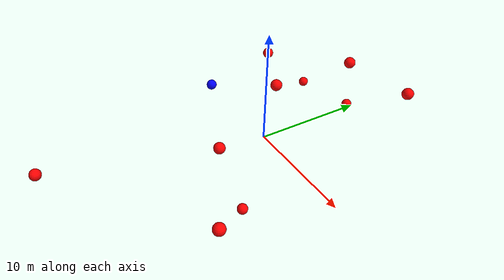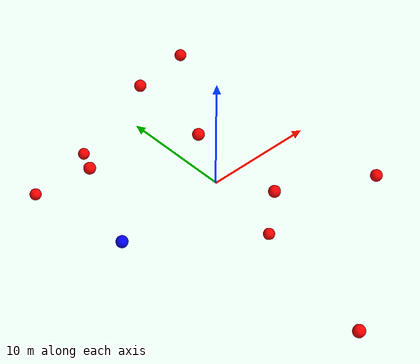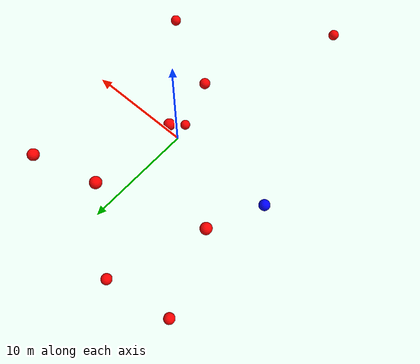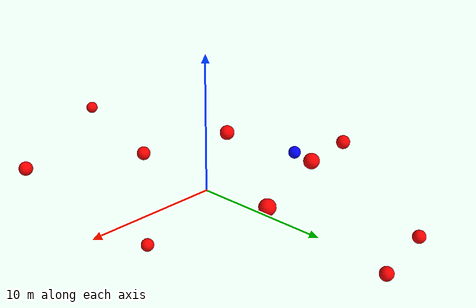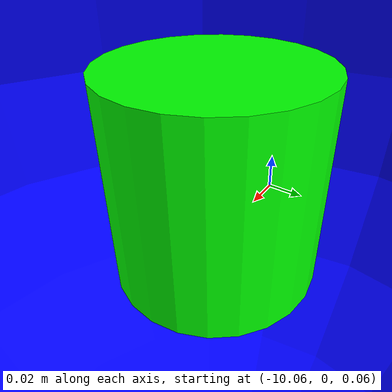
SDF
<?xml version="1.0" ?>
<sdf version="1.8">
    <world name="3d_world">
        <physics name="1ms" type="ode">
            <max_step_size>0.001</max_step_size>
            <real_time_factor>1.0</real_time_factor>
            <real_time_update_rate>1000.0</real_time_update_rate>
        </physics>
        <gravity>0 0 0</gravity>

        <plugin
            filename="gz-sim-physics-system"
            name="gz::sim::v8::systems::Physics">
        </plugin>
        <plugin
            filename="libignition-gazebo-user-commands-system.so"
            name="ignition::gazebo::systems::UserCommands">
        </plugin>
        <plugin
            filename="gz-sim-scene-broadcaster-system"
            name="gz::sim::systems::SceneBroadcaster">
        </plugin>
        <plugin
            filename="gz-sim-sensors-system"
            name="gz::sim::systems::Sensors">
            <render_engine>ogre2</render_engine>
        </plugin>

        <light type="directional" name="sun">
            <cast_shadows>true</cast_shadows>
            <pose>0 0 10 0 0 0</pose>
            <diffuse>0.8 0.8 0.8 1</diffuse>
            <specular>0.2 0.2 0.2 1</specular>
            <attenuation>
                <range>1000</range>
                <constant>0.9</constant>
                <linear>0.01</linear>
                <quadratic>0.001</quadratic>
            </attenuation>
            <direction>-0.5 0.1 -0.9</direction>
        </light>

        <!-- AGENTE -->
        <model name='agente' canonical_link='chassis'>
            <pose relative_to='world'>-10.0 0 0.0 0 0 0</pose>
            <link name='chassis'>
                <pose relative_to='__model__'>0.0 0 0.0 0 0 0</pose>
                <inertial>
                    <mass>1.14395</mass>
                    <inertia>
                        <ixx>0.095329</ixx>
                        <ixy>0</ixy>
                        <ixz>0</ixz>
                        <iyy>0.381317</iyy>
                        <iyz>0</iyz>
                        <izz>0.476646</izz>
                    </inertia>
                </inertial>
                <visual name='visual'>
                    <geometry>
                        <sphere>
                            <radius>0.5</radius>
                        </sphere>
                    </geometry>
                    <material>
                        <ambient>0.0 0.0 1.0 1</ambient>
                        <diffuse>0.0 0.0 1.0 1</diffuse>
                        <specular>0.0 0.0 1.0 1</specular>
                    </material>
                </visual>
                <collision name='collision'>
                    <geometry>
                        <sphere>
                            <radius>0.5</radius>
                        </sphere>
                    </geometry>
                </collision>
                <enable_gravity>false</enable_gravity>
            </link>

            <link name='lidar_link'>
                <pose relative_to='chassis'>0.0 0 0.1 0 0 0</pose>
                <inertial>
                    <mass>0.1</mass>
                    <inertia>
                        <ixx>0.000166667</ixx>
                        <iyy>0.000166667</iyy>
                        <izz>0.000166667</izz>
                    </inertia>
                </inertial>
                <collision name='collision'>
                    <geometry>
                        <cylinder>
                            <radius>0.05</radius>
                            <length>0.1</length>
                        </cylinder>
                    </geometry>
                </collision>
                <visual name='visual'>
                    <geometry>
                        <cylinder>
                            <radius>0.05</radius>
                            <length>0.1</length>
                        </cylinder>
                    </geometry>
                    <material>
                        <ambient>0.0 1.0 0.0 1</ambient>
                        <diffuse>0.0 1.0 0.0 1</diffuse>
                        <specular>0.0 1.0 0.0 1</specular>
                    </material>
                </visual>
                <sensor name="lidar" type="gpu_lidar">
                    <topic>scan</topic>
                    <update_rate>10</update_rate>
                    <lidar>
                        <scan>
                            <horizontal>
                                <samples>5000</samples>
                                <resolution>1</resolution>
                                <min_angle>-3.14159</min_angle>
                                <max_angle>3.14159</max_angle>
                            </horizontal>
                        </scan>
                        <range>
                            <min>0.1</min>
                            <max>10.0</max>
                            <resolution>0.01</resolution>
                        </range>
                    </lidar>
                    <visualize>true</visualize>
                    <always_on>true</always_on>
                    <update_rate>10</update_rate>
                    <pose_frame>lidar</pose_frame>
                </sensor>
                <enable_gravity>false</enable_gravity>
            </link>

            <joint name="lidar_joint" type="fixed">
                <parent>chassis</parent>
                <child>lidar_link</child>
            </joint>

            <plugin
                filename="ignition-gazebo-joint-state-publisher-system"
                name="ignition::gazebo::systems::JointStatePublisher">
            </plugin>
            <plugin
                filename="ignition-gazebo-odometry-publisher-system"
                name="ignition::gazebo::systems::OdometryPublisher">
                <dimensions>3</dimensions>
            </plugin>
            <plugin
                filename="ignition-gazebo-velocity-control-system"
                name="ignition::gazebo::systems::VelocityControl">
                <initial_linear>0.0 0 0</initial_linear>
                <initial_angular>0 0 0.0</initial_angular>
            </plugin>
            <plugin
                filename="libignition-gazebo-pose-publisher-system.so"
                name="ignition::gazebo::systems::PosePublisher">
                <topic>/agente/pose</topic>
                <frame_id>agente</frame_id>
                <update_rate>30</update_rate>
            </plugin>
        </model>

        <!-- OBSTACLE 1 -->
        <model name='obstacle_1' canonical_link='obstacle'>
            <static>false</static>
            <pose relative_to='world'>2.65 -3.72 -4.88 0 0 0</pose>
            <link name='obstacle'>
                <pose relative_to='__model__'>0.0 0 0.0 0 0 0</pose>
                <visual name='visual'>
                    <geometry>
                        <sphere>
                            <radius>0.50</radius>
                        </sphere>
                    </geometry>
                    <material>
                        <ambient>1.0 0.0 0.0 1</ambient>
                        <diffuse>1.0 0.0 0.0 1</diffuse>
                        <specular>1.0 0.0 0.0 1</specular>
                    </material>
                </visual>
                <collision name='collision'>
                    <geometry>
                        <sphere>
                            <radius>0.50</radius>
                        </sphere>
                    </geometry>
                </collision>
                <enable_gravity>false</enable_gravity>
            </link>

            <plugin
                filename="ignition-gazebo-velocity-control-system"
                name="ignition::gazebo::systems::VelocityControl">
                <initial_linear>0.47 0.60 0.78</initial_linear>
                <initial_angular>0 0 0</initial_angular>
            </plugin>

            <plugin
                filename="ignition-gazebo-odometry-publisher-system"
                name="ignition::gazebo::systems::OdometryPublisher">
                <dimensions>3</dimensions>
            </plugin>
        </model>

        <!-- OBSTACLE 2 -->
        <model name='obstacle_2' canonical_link='obstacle'>
            <static>false</static>
            <pose relative_to='world'>1.36 -5.27 1.77 0 0 0</pose>
            <link name='obstacle'>
                <pose relative_to='__model__'>0.0 0 0.0 0 0 0</pose>
                <visual name='visual'>
                    <geometry>
                        <sphere>
                            <radius>0.50</radius>
                        </sphere>
                    </geometry>
                    <material>
                        <ambient>1.0 0.0 0.0 1</ambient>
                        <diffuse>1.0 0.0 0.0 1</diffuse>
                        <specular>1.0 0.0 0.0 1</specular>
                    </material>
                </visual>
                <collision name='collision'>
                    <geometry>
                        <sphere>
                            <radius>0.50</radius>
                        </sphere>
                    </geometry>
                </collision>
                <enable_gravity>false</enable_gravity>
            </link>

            <plugin
                filename="ignition-gazebo-velocity-control-system"
                name="ignition::gazebo::systems::VelocityControl">
                <initial_linear>-1.14 1.56 -0.52</initial_linear>
                <initial_angular>0 0 0</initial_angular>
            </plugin>

            <plugin
                filename="ignition-gazebo-odometry-publisher-system"
                name="ignition::gazebo::systems::OdometryPublisher">
                <dimensions>3</dimensions>
            </plugin>
        </model>

        <!-- OBSTACLE 3 -->
        <model name='obstacle_3' canonical_link='obstacle'>
            <static>false</static>
            <pose relative_to='world'>-9.79 11.82 -3.11 0 0 0</pose>
            <link name='obstacle'>
                <pose relative_to='__model__'>0.0 0 0.0 0 0 0</pose>
                <visual name='visual'>
                    <geometry>
                        <sphere>
                            <radius>0.50</radius>
                        </sphere>
                    </geometry>
                    <material>
                        <ambient>1.0 0.0 0.0 1</ambient>
                        <diffuse>1.0 0.0 0.0 1</diffuse>
                        <specular>1.0 0.0 0.0 1</specular>
                    </material>
                </visual>
                <collision name='collision'>
                    <geometry>
                        <sphere>
                            <radius>0.50</radius>
                        </sphere>
                    </geometry>
                </collision>
                <enable_gravity>false</enable_gravity>
            </link>

            <plugin
                filename="ignition-gazebo-velocity-control-system"
                name="ignition::gazebo::systems::VelocityControl">
                <initial_linear>1.50 -1.28 0.34</initial_linear>
                <initial_angular>0 0 0</initial_angular>
            </plugin>

            <plugin
                filename="ignition-gazebo-odometry-publisher-system"
                name="ignition::gazebo::systems::OdometryPublisher">
                <dimensions>3</dimensions>
            </plugin>
        </model>

        <!-- OBSTACLE 4 -->
        <model name='obstacle_4' canonical_link='obstacle'>
            <static>false</static>
            <pose relative_to='world'>8.83 -9.37 1.62 0 0 0</pose>
            <link name='obstacle'>
                <pose relative_to='__model__'>0.0 0 0.0 0 0 0</pose>
                <visual name='visual'>
                    <geometry>
                        <sphere>
                            <radius>0.50</radius>
                        </sphere>
                    </geometry>
                    <material>
                        <ambient>1.0 0.0 0.0 1</ambient>
                        <diffuse>1.0 0.0 0.0 1</diffuse>
                        <specular>1.0 0.0 0.0 1</specular>
                    </material>
                </visual>
                <collision name='collision'>
                    <geometry>
                        <sphere>
                            <radius>0.50</radius>
                        </sphere>
                    </geometry>
                </collision>
                <enable_gravity>false</enable_gravity>
            </link>

            <plugin
                filename="ignition-gazebo-velocity-control-system"
                name="ignition::gazebo::systems::VelocityControl">
                <initial_linear>-1.27 1.53 -0.26</initial_linear>
                <initial_angular>0 0 0</initial_angular>
            </plugin>

            <plugin
                filename="ignition-gazebo-odometry-publisher-system"
                name="ignition::gazebo::systems::OdometryPublisher">
                <dimensions>3</dimensions>
            </plugin>
        </model>

        <!-- OBSTACLE 5 -->
        <model name='obstacle_5' canonical_link='obstacle'>
            <static>false</static>
            <pose relative_to='world'>-3.62 13.00 -2.93 0 0 0</pose>
            <link name='obstacle'>
                <pose relative_to='__model__'>0.0 0 0.0 0 0 0</pose>
                <visual name='visual'>
                    <geometry>
                        <sphere>
                            <radius>0.50</radius>
                        </sphere>
                    </geometry>
                    <material>
                        <ambient>1.0 0.0 0.0 1</ambient>
                        <diffuse>1.0 0.0 0.0 1</diffuse>
                        <specular>1.0 0.0 0.0 1</specular>
                    </material>
                </visual>
                <collision name='collision'>
                    <geometry>
                        <sphere>
                            <radius>0.50</radius>
                        </sphere>
                    </geometry>
                </collision>
                <enable_gravity>false</enable_gravity>
            </link>

            <plugin
                filename="ignition-gazebo-velocity-control-system"
                name="ignition::gazebo::systems::VelocityControl">
                <initial_linear>0.09 -1.95 0.44</initial_linear>
                <initial_angular>0 0 0</initial_angular>
            </plugin>

            <plugin
                filename="ignition-gazebo-odometry-publisher-system"
                name="ignition::gazebo::systems::OdometryPublisher">
                <dimensions>3</dimensions>
            </plugin>
        </model>

        <!-- OBSTACLE 6 -->
        <model name='obstacle_6' canonical_link='obstacle'>
            <static>false</static>
            <pose relative_to='world'>-0.63 1.42 4.65 0 0 0</pose>
            <link name='obstacle'>
                <pose relative_to='__model__'>0.0 0 0.0 0 0 0</pose>
                <visual name='visual'>
                    <geometry>
                        <sphere>
                            <radius>0.50</radius>
                        </sphere>
                    </geometry>
                    <material>
                        <ambient>1.0 0.0 0.0 1</ambient>
                        <diffuse>1.0 0.0 0.0 1</diffuse>
                        <specular>1.0 0.0 0.0 1</specular>
                    </material>
                </visual>
                <collision name='collision'>
                    <geometry>
                        <sphere>
                            <radius>0.50</radius>
                        </sphere>
                    </geometry>
                </collision>
                <enable_gravity>false</enable_gravity>
            </link>

            <plugin
                filename="ignition-gazebo-velocity-control-system"
                name="ignition::gazebo::systems::VelocityControl">
                <initial_linear>-0.32 -0.43 -1.40</initial_linear>
                <initial_angular>0 0 0</initial_angular>
            </plugin>

            <plugin
                filename="ignition-gazebo-odometry-publisher-system"
                name="ignition::gazebo::systems::OdometryPublisher">
                <dimensions>3</dimensions>
            </plugin>
        </model>

        <!-- OBSTACLE 7 -->
        <model name='obstacle_7' canonical_link='obstacle'>
            <static>false</static>
            <pose relative_to='world'>5.67 10.56 4.41 0 0 0</pose>
            <link name='obstacle'>
                <pose relative_to='__model__'>0.0 0 0.0 0 0 0</pose>
                <visual name='visual'>
                    <geometry>
                        <sphere>
                            <radius>0.50</radius>
                        </sphere>
                    </geometry>
                    <material>
                        <ambient>1.0 0.0 0.0 1</ambient>
                        <diffuse>1.0 0.0 0.0 1</diffuse>
                        <specular>1.0 0.0 0.0 1</specular>
                    </material>
                </visual>
                <collision name='collision'>
                    <geometry>
                        <sphere>
                            <radius>0.50</radius>
                        </sphere>
                    </geometry>
                </collision>
                <enable_gravity>false</enable_gravity>
            </link>

            <plugin
                filename="ignition-gazebo-velocity-control-system"
                name="ignition::gazebo::systems::VelocityControl">
                <initial_linear>-0.31 -1.82 -0.76</initial_linear>
                <initial_angular>0 0 0</initial_angular>
            </plugin>

            <plugin
                filename="ignition-gazebo-odometry-publisher-system"
                name="ignition::gazebo::systems::OdometryPublisher">
                <dimensions>3</dimensions>
            </plugin>
        </model>

        <!-- OBSTACLE 8 -->
        <model name='obstacle_8' canonical_link='obstacle'>
            <static>false</static>
            <pose relative_to='world'>-3.92 -19.01 0.80 0 0 0</pose>
            <link name='obstacle'>
                <pose relative_to='__model__'>0.0 0 0.0 0 0 0</pose>
                <visual name='visual'>
                    <geometry>
                        <sphere>
                            <radius>0.50</radius>
                        </sphere>
                    </geometry>
                    <material>
                        <ambient>1.0 0.0 0.0 1</ambient>
                        <diffuse>1.0 0.0 0.0 1</diffuse>
                        <specular>1.0 0.0 0.0 1</specular>
                    </material>
                </visual>
                <collision name='collision'>
                    <geometry>
                        <sphere>
                            <radius>0.50</radius>
                        </sphere>
                    </geometry>
                </collision>
                <enable_gravity>false</enable_gravity>
            </link>

            <plugin
                filename="ignition-gazebo-velocity-control-system"
                name="ignition::gazebo::systems::VelocityControl">
                <initial_linear>0.94 1.76 -0.07</initial_linear>
                <initial_angular>0 0 0</initial_angular>
            </plugin>

            <plugin
                filename="ignition-gazebo-odometry-publisher-system"
                name="ignition::gazebo::systems::OdometryPublisher">
                <dimensions>3</dimensions>
            </plugin>
        </model>

        <!-- OBSTACLE 9 -->
        <model name='obstacle_9' canonical_link='obstacle'>
            <static>false</static>
            <pose relative_to='world'>-8.38 5.71 2.93 0 0 0</pose>
            <link name='obstacle'>
                <pose relative_to='__model__'>0.0 0 0.0 0 0 0</pose>
                <visual name='visual'>
                    <geometry>
                        <sphere>
                            <radius>0.50</radius>
                        </sphere>
                    </geometry>
                    <material>
                        <ambient>1.0 0.0 0.0 1</ambient>
                        <diffuse>1.0 0.0 0.0 1</diffuse>
                        <specular>1.0 0.0 0.0 1</specular>
                    </material>
                </visual>
                <collision name='collision'>
                    <geometry>
                        <sphere>
                            <radius>0.50</radius>
                        </sphere>
                    </geometry>
                </collision>
                <enable_gravity>false</enable_gravity>
            </link>

            <plugin
                filename="ignition-gazebo-velocity-control-system"
                name="ignition::gazebo::systems::VelocityControl">
                <initial_linear>1.61 -1.06 -0.54</initial_linear>
                <initial_angular>0 0 0</initial_angular>
            </plugin>

            <plugin
                filename="ignition-gazebo-odometry-publisher-system"
                name="ignition::gazebo::systems::OdometryPublisher">
                <dimensions>3</dimensions>
            </plugin>
        </model>

        <!-- OBSTACLE 10 -->
        <model name='obstacle_10' canonical_link='obstacle'>
            <static>false</static>
            <pose relative_to='world'>-0.14 9.07 4.95 0 0 0</pose>
            <link name='obstacle'>
                <pose relative_to='__model__'>0.0 0 0.0 0 0 0</pose>
                <visual name='visual'>
                    <geometry>
                        <sphere>
                            <radius>0.50</radius>
                        </sphere>
                    </geometry>
                    <material>
                        <ambient>1.0 0.0 0.0 1</ambient>
                        <diffuse>1.0 0.0 0.0 1</diffuse>
                        <specular>1.0 0.0 0.0 1</specular>
                    </material>
                </visual>
                <collision name='collision'>
                    <geometry>
                        <sphere>
                            <radius>0.50</radius>
                        </sphere>
                    </geometry>
                </collision>
                <enable_gravity>false</enable_gravity>
            </link>

            <plugin
                filename="ignition-gazebo-velocity-control-system"
                name="ignition::gazebo::systems::VelocityControl">
                <initial_linear>1.08 -1.30 -0.71</initial_linear>
                <initial_angular>0 0 0</initial_angular>
            </plugin>

            <plugin
                filename="ignition-gazebo-odometry-publisher-system"
                name="ignition::gazebo::systems::OdometryPublisher">
                <dimensions>3</dimensions>
            </plugin>
        </model>

    </world>
</sdf>
